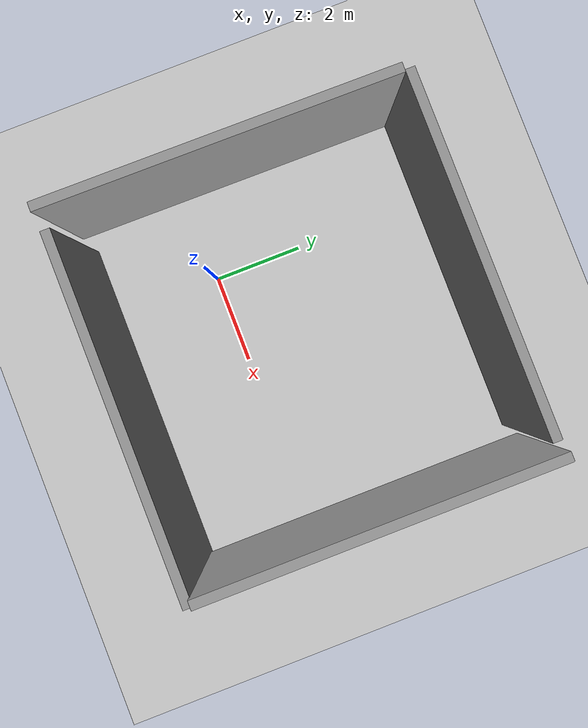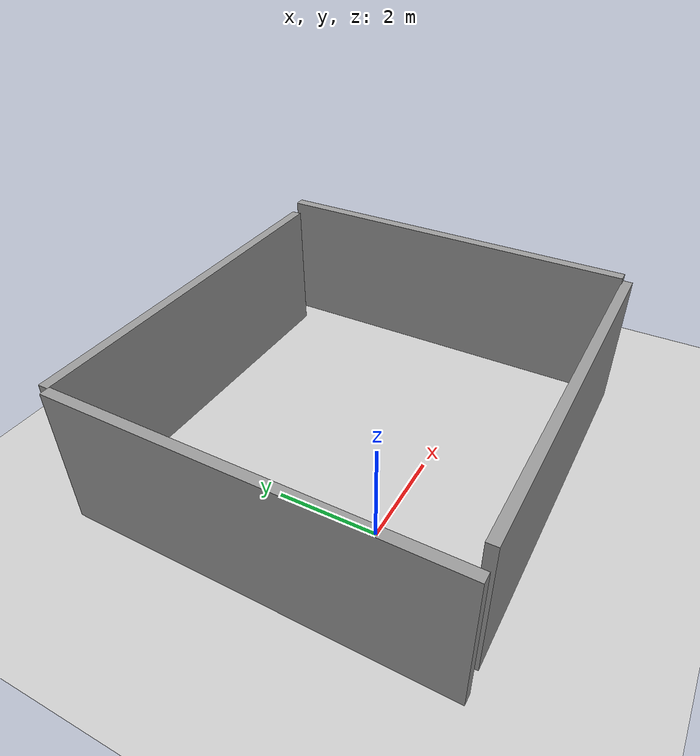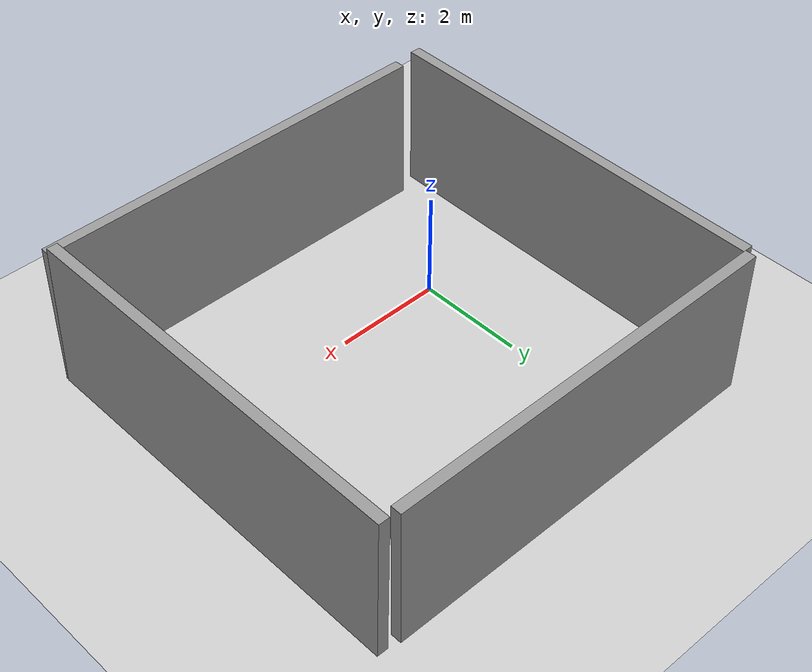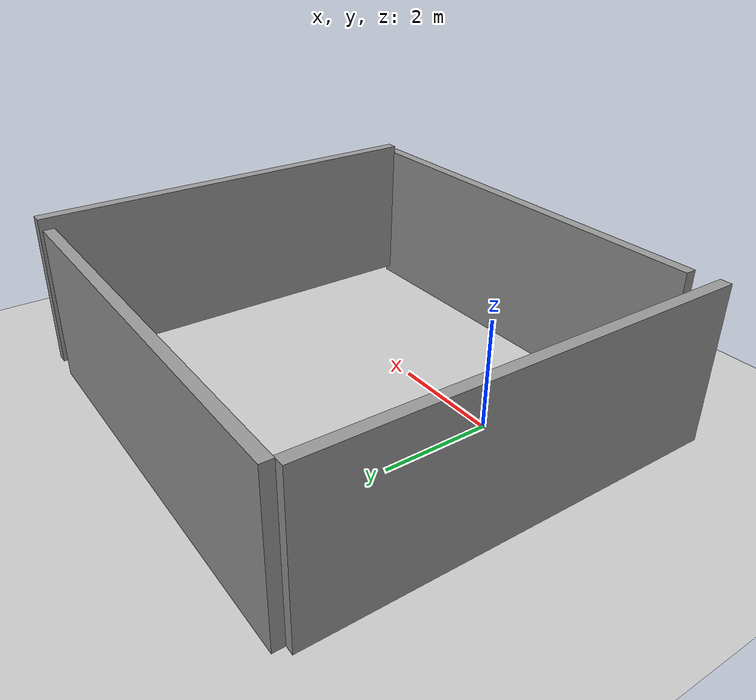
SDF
<sdf version='1.10'>
  <world name='empty'>
    <physics name='1ms' type='ignored'>
      <max_step_size>0.001</max_step_size>
      <real_time_factor>1</real_time_factor>
      <real_time_update_rate>1000</real_time_update_rate>
    </physics>
    <plugin name='gz::sim::systems::Physics' filename='gz-sim-physics-system'/>
    <plugin name='gz::sim::systems::UserCommands' filename='gz-sim-user-commands-system'/>
    <plugin name='gz::sim::systems::SceneBroadcaster' filename='gz-sim-scene-broadcaster-system'/>
    <plugin name='gz::sim::systems::Contact' filename='gz-sim-contact-system'/>
    <plugin name='gz::sim::systems::Sensors' filename='gz-sim-sensors-system'>
      <render_engine>ogre</render_engine>
    </plugin>
    <plugin name="gz::sim::systems::Imu" filename="gz-sim-imu-system"/>
    <gravity>0 0 -9.8000000000000007</gravity>
    <magnetic_field>5.5644999999999998e-06 2.2875799999999999e-05 -4.2388400000000002e-05</magnetic_field>
    <atmosphere type='adiabatic'/>
    <scene>
      <ambient>0.400000006 0.400000006 0.400000006 1</ambient>
      <background>0.699999988 0.699999988 0.699999988 1</background>
      <shadows>true</shadows>
    </scene>
    <model name='ground_plane'>
      <static>true</static>
      <link name='link'>
        <collision name='collision'>
          <geometry>
            <plane>
              <normal>0 0 1</normal>
              <size>100 100</size>
            </plane>
          </geometry>
          <surface>
            <friction>
              <ode/>
            </friction>
            <bounce/>
            <contact/>
          </surface>
        </collision>
        <visual name='visual'>
          <geometry>
            <plane>
              <normal>0 0 1</normal>
              <size>100 100</size>
            </plane>
          </geometry>
          <material>
            <ambient>0.800000012 0.800000012 0.800000012 1</ambient>
            <diffuse>0.800000012 0.800000012 0.800000012 1</diffuse>
            <specular>0.800000012 0.800000012 0.800000012 1</specular>
          </material>
        </visual>
        <pose>0 0 0 0 0 0</pose>
        <inertial>
          <pose>0 0 0 0 0 0</pose>
          <mass>1</mass>
          <inertia>
            <ixx>1</ixx>
            <ixy>0</ixy>
            <ixz>0</ixz>
            <iyy>1</iyy>
            <iyz>0</iyz>
            <izz>1</izz>
          </inertia>
        </inertial>
        <enable_wind>false</enable_wind>
      </link>
      <pose>0 0 0 0 0 0</pose>
      <self_collide>false</self_collide>
    </model>
    <model name='grey_wall'>
      <static>true</static>
      <link name='link'>
        <pose>0 0 1.3999999999999999 0 0 0</pose>
        <collision name='collision'>
          <geometry>
            <box>
              <size>7.5 0.20000000000000001 2.7999999999999998</size>
            </box>
          </geometry>
          <surface>
            <friction>
              <ode/>
            </friction>
            <bounce/>
            <contact/>
          </surface>
        </collision>
        <visual name='visual'>
          <cast_shadows>false</cast_shadows>
          <geometry>
            <box>
              <size>7.5 0.20000000000000001 2.7999999999999998</size>
            </box>
          </geometry>
          <material>
            <script>
              <uri>file:///home/zzuse/.gz/fuel/fuel.gazebosim.org/openrobotics/models/grey wall/3/materials/scripts</uri>
              <uri>https://fuel.gazebosim.org/1.0/openrobotics/models/grey wall/3/files/materials/textures</uri>
              <name>vrc/grey_wall</name>
            </script>
          </material>
        </visual>
        <inertial>
          <pose>0 0 0 0 0 0</pose>
          <mass>1</mass>
          <inertia>
            <ixx>1</ixx>
            <ixy>0</ixy>
            <ixz>0</ixz>
            <iyy>1</iyy>
            <iyz>0</iyz>
            <izz>1</izz>
          </inertia>
        </inertial>
        <enable_wind>false</enable_wind>
      </link>
      <pose>5.8880324363708496 1.3785521984100342 0.13159920275211334 0.020749400181857544 8.3142278932474084e-06 -1.5711999447786229</pose>
      <self_collide>false</self_collide>
    </model>
    <model name='grey_wall_0'>
      <static>true</static>
      <link name='link'>
        <pose>0 0 1.3999999999999999 0 0 0</pose>
        <collision name='collision'>
          <geometry>
            <box>
              <size>7.5 0.20000000000000001 2.7999999999999998</size>
            </box>
          </geometry>
          <surface>
            <friction>
              <ode/>
            </friction>
            <bounce/>
            <contact/>
          </surface>
        </collision>
        <visual name='visual'>
          <cast_shadows>false</cast_shadows>
          <geometry>
            <box>
              <size>7.5 0.20000000000000001 2.7999999999999998</size>
            </box>
          </geometry>
          <material>
            <script>
              <uri>file:///home/zzuse/.gz/fuel/fuel.gazebosim.org/openrobotics/models/grey wall/3/materials/scripts</uri>
              <uri>https://fuel.gazebosim.org/1.0/openrobotics/models/grey wall/3/files/materials/textures</uri>
              <name>vrc/grey_wall</name>
            </script>
          </material>
        </visual>
        <inertial>
          <pose>0 0 0 0 0 0</pose>
          <mass>1</mass>
          <inertia>
            <ixx>1</ixx>
            <ixy>0</ixy>
            <ixz>0</ixz>
            <iyy>1</iyy>
            <iyz>0</iyz>
            <izz>1</izz>
          </inertia>
        </inertial>
        <enable_wind>false</enable_wind>
      </link>
      <pose>2.1624884605407715 -2.4556999206542969 0 0 0 0</pose>
      <self_collide>false</self_collide>
    </model>
    <model name='grey_wall_1'>
      <static>true</static>
      <link name='link'>
        <pose>0 0 1.3999999999999999 0 0 0</pose>
        <collision name='collision'>
          <geometry>
            <box>
              <size>7.5 0.20000000000000001 2.7999999999999998</size>
            </box>
          </geometry>
          <surface>
            <friction>
              <ode/>
            </friction>
            <bounce/>
            <contact/>
          </surface>
        </collision>
        <visual name='visual'>
          <cast_shadows>false</cast_shadows>
          <geometry>
            <box>
              <size>7.5 0.20000000000000001 2.7999999999999998</size>
            </box>
          </geometry>
          <material>
            <script>
              <uri>file:///home/zzuse/.gz/fuel/fuel.gazebosim.org/openrobotics/models/grey wall/3/materials/scripts</uri>
              <uri>https://fuel.gazebosim.org/1.0/openrobotics/models/grey wall/3/files/materials/textures</uri>
              <name>vrc/grey_wall</name>
            </script>
          </material>
        </visual>
        <inertial>
          <pose>0 0 0 0 0 0</pose>
          <mass>1</mass>
          <inertia>
            <ixx>1</ixx>
            <ixy>0</ixy>
            <ixz>0</ixz>
            <iyy>1</iyy>
            <iyz>0</iyz>
            <izz>1</izz>
          </inertia>
        </inertial>
        <enable_wind>false</enable_wind>
      </link>
      <pose>1.7738151550292969 5.0166797637939453 0 0 0 0</pose>
      <self_collide>false</self_collide>
    </model>
    <model name='grey_wall_2'>
      <static>true</static>
      <link name='link'>
        <pose>0 0 1.3999999999999999 0 0 0</pose>
        <collision name='collision'>
          <geometry>
            <box>
              <size>7.5 0.20000000000000001 2.7999999999999998</size>
            </box>
          </geometry>
          <surface>
            <friction>
              <ode/>
            </friction>
            <bounce/>
            <contact/>
          </surface>
        </collision>
        <visual name='visual'>
          <cast_shadows>false</cast_shadows>
          <geometry>
            <box>
              <size>7.5 0.20000000000000001 2.7999999999999998</size>
            </box>
          </geometry>
          <material>
            <script>
              <uri>file:///home/zzuse/.gz/fuel/fuel.gazebosim.org/openrobotics/models/grey wall/3/materials/scripts</uri>
              <uri>https://fuel.gazebosim.org/1.0/openrobotics/models/grey wall/3/files/materials/textures</uri>
              <name>vrc/grey_wall</name>
            </script>
          </material>
        </visual>
        <inertial>
          <pose>0 0 0 0 0 0</pose>
          <mass>1</mass>
          <inertia>
            <ixx>1</ixx>
            <ixy>0</ixy>
            <ixz>0</ixz>
            <iyy>1</iyy>
            <iyz>0</iyz>
            <izz>1</izz>
          </inertia>
        </inertial>
        <enable_wind>false</enable_wind>
      </link>
      <pose>-2.0616753101348877 1.167360782623291 0 0 0 1.5627999525889265</pose>
      <self_collide>false</self_collide>
    </model>
    <light name='sun' type='directional'>
      <pose>0 0 10 0 0 0</pose>
      <cast_shadows>true</cast_shadows>
      <intensity>1</intensity>
      <direction>-0.5 0.10000000000000001 -0.90000000000000002</direction>
      <diffuse>0.800000012 0.800000012 0.800000012 1</diffuse>
      <specular>0.200000003 0.200000003 0.200000003 1</specular>
      <attenuation>
        <range>1000</range>
        <linear>0.0099999997764825821</linear>
        <constant>0.89999997615814209</constant>
        <quadratic>0.0010000000474974513</quadratic>
      </attenuation>
      <spot>
        <inner_angle>0</inner_angle>
        <outer_angle>0</outer_angle>
        <falloff>0</falloff>
      </spot>
    </light>
  </world>
</sdf>
